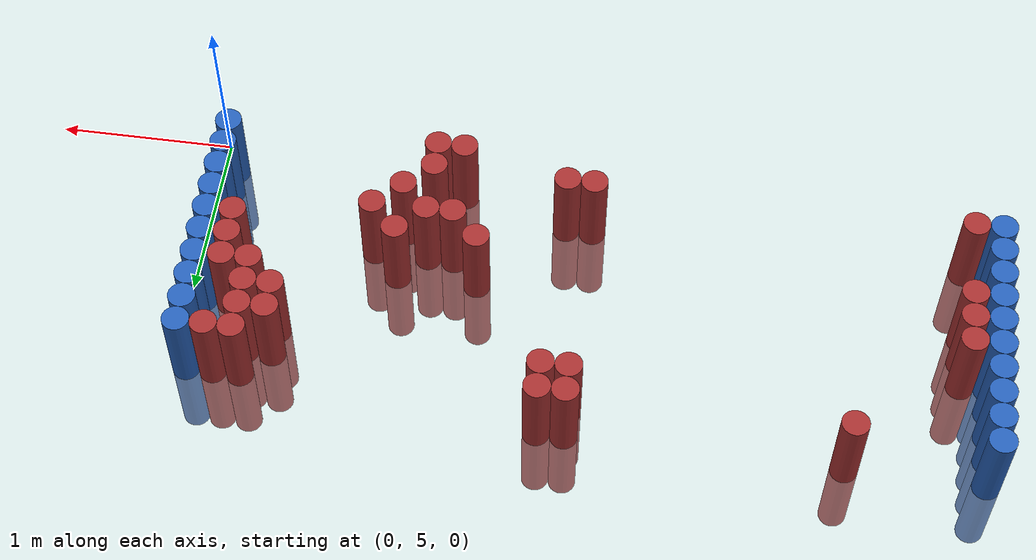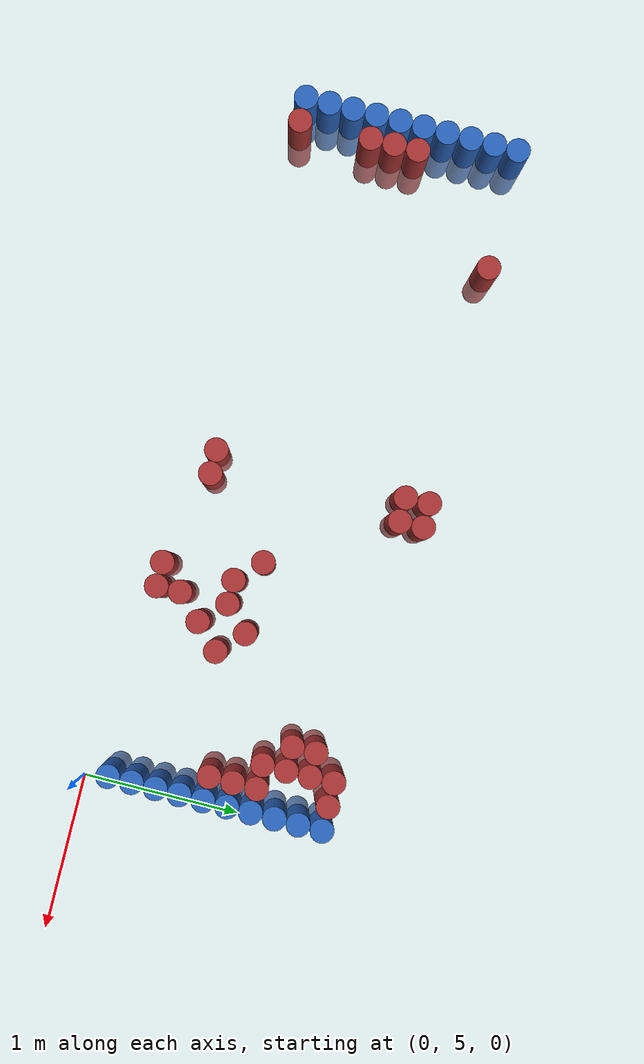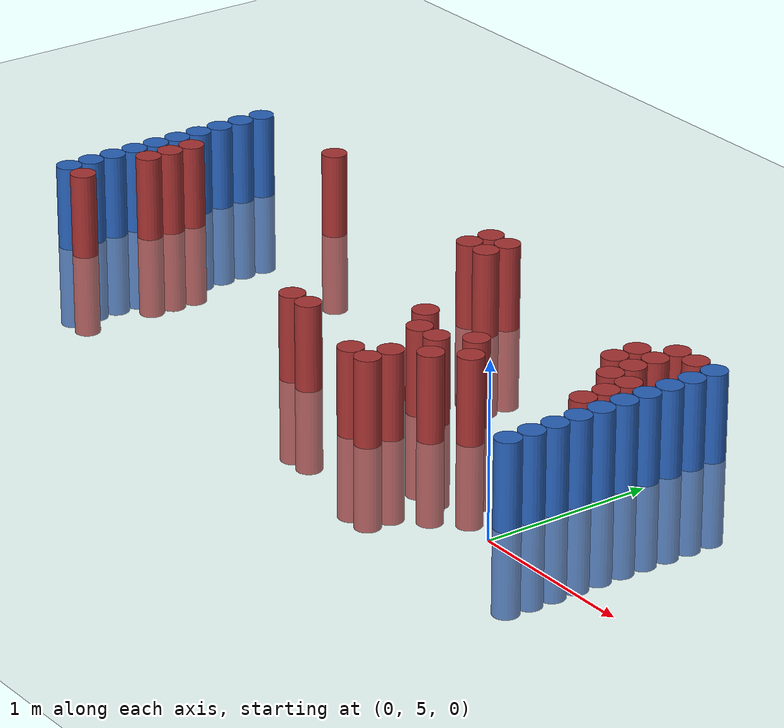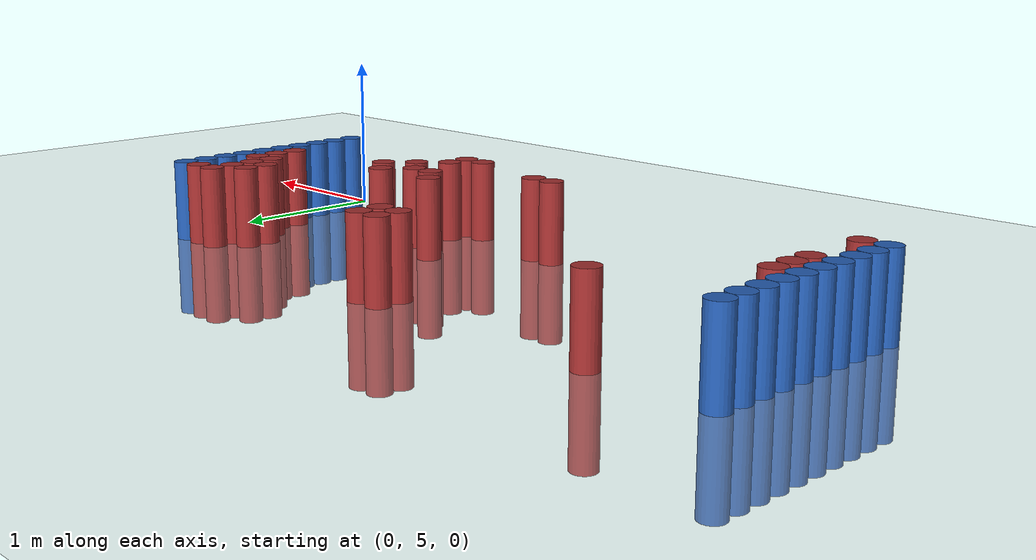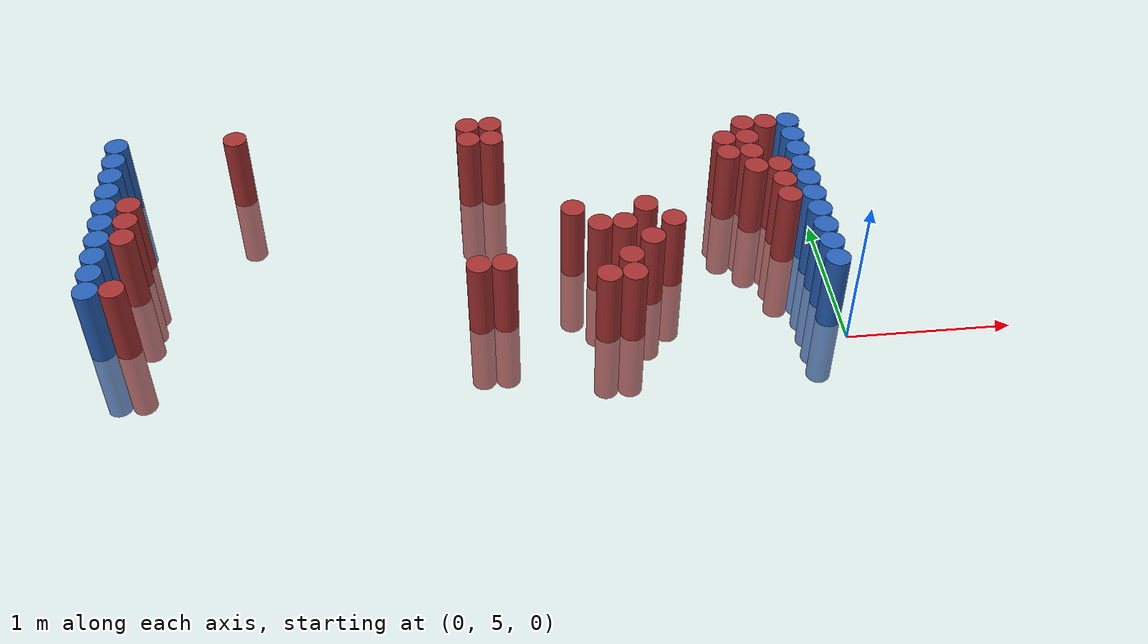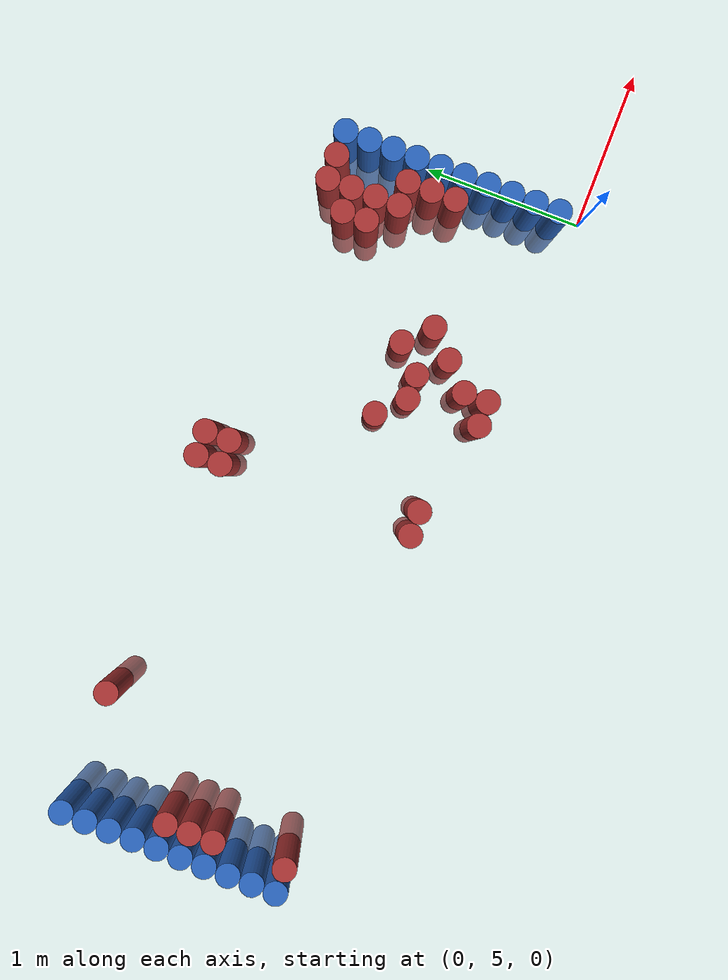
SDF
<sdf version="1.6">
 <world name="default">
  <model name="ground_plane">
   <static>1</static>
   <link name="link">
    <collision name="collision">
     <geometry><plane><normal>0 0 1</normal><size>100 100</size></plane></geometry>
     <surface><friction><ode><mu>100</mu><mu2>50</mu2></ode></friction></surface>
    </collision>
    <visual name="visual">
     <cast_shadows>0</cast_shadows>
     <geometry><plane><normal>0 0 1</normal><size>100 100</size></plane></geometry>
     <material>
      <script><uri>file://media/materials/scripts/gazebo.material</uri><name>Gazebo/Grey</name></script>
     </material>
    </visual>
   </link>
  </model>
  <model name="unit_cylinder_97">
   <static>1</static>
   <pose>-4.425000 5.325000 0.000000 0.000000 0.000000 0.000000</pose>
   <link name="link">
    <inertial>
     <mass>1</mass>
     <inertia><ixx>0.145833</ixx><ixy>0</ixy><ixz>0</ixz><iyy>0.145833</iyy><iyz>0</iyz><izz>0.125</izz></inertia>
    </inertial>
    <collision name="collision">
     <geometry><cylinder><radius>0.075000</radius><length>1</length></cylinder></geometry>
    </collision>
    <visual name="visual">
     <geometry><cylinder><radius>0.075000</radius><length>1</length></cylinder></geometry>
     <material>
      <ambient>0.152000 0.379000 0.720000 1</ambient>
      <diffuse>0.152000 0.379000 0.720000 1</diffuse>
     </material>
     <material>
      <script><name>Gazebo/Grey</name><uri>file://media/materials/scripts/gazebo.material</uri></script>
     </material>
    </visual>
   </link>
  </model>
  <model name="unit_cylinder_98">
   <static>1</static>
   <pose>-4.425000 5.475000 0.000000 0.000000 0.000000 0.000000</pose>
   <link name="link">
    <inertial>
     <mass>1</mass>
     <inertia><ixx>0.145833</ixx><ixy>0</ixy><ixz>0</ixz><iyy>0.145833</iyy><iyz>0</iyz><izz>0.125</izz></inertia>
    </inertial>
    <collision name="collision">
     <geometry><cylinder><radius>0.075000</radius><length>1</length></cylinder></geometry>
    </collision>
    <visual name="visual">
     <geometry><cylinder><radius>0.075000</radius><length>1</length></cylinder></geometry>
     <material>
      <ambient>0.152000 0.379000 0.720000 1</ambient>
      <diffuse>0.152000 0.379000 0.720000 1</diffuse>
     </material>
     <material>
      <script><name>Gazebo/Grey</name><uri>file://media/materials/scripts/gazebo.material</uri></script>
     </material>
    </visual>
   </link>
  </model>
  <model name="unit_cylinder_99">
   <static>1</static>
   <pose>-4.425000 5.625000 0.000000 0.000000 0.000000 0.000000</pose>
   <link name="link">
    <inertial>
     <mass>1</mass>
     <inertia><ixx>0.145833</ixx><ixy>0</ixy><ixz>0</ixz><iyy>0.145833</iyy><iyz>0</iyz><izz>0.125</izz></inertia>
    </inertial>
    <collision name="collision">
     <geometry><cylinder><radius>0.075000</radius><length>1</length></cylinder></geometry>
    </collision>
    <visual name="visual">
     <geometry><cylinder><radius>0.075000</radius><length>1</length></cylinder></geometry>
     <material>
      <ambient>0.152000 0.379000 0.720000 1</ambient>
      <diffuse>0.152000 0.379000 0.720000 1</diffuse>
     </material>
     <material>
      <script><name>Gazebo/Grey</name><uri>file://media/materials/scripts/gazebo.material</uri></script>
     </material>
    </visual>
   </link>
  </model>
  <model name="unit_cylinder_100">
   <static>1</static>
   <pose>-4.425000 5.775000 0.000000 0.000000 0.000000 0.000000</pose>
   <link name="link">
    <inertial>
     <mass>1</mass>
     <inertia><ixx>0.145833</ixx><ixy>0</ixy><ixz>0</ixz><iyy>0.145833</iyy><iyz>0</iyz><izz>0.125</izz></inertia>
    </inertial>
    <collision name="collision">
     <geometry><cylinder><radius>0.075000</radius><length>1</length></cylinder></geometry>
    </collision>
    <visual name="visual">
     <geometry><cylinder><radius>0.075000</radius><length>1</length></cylinder></geometry>
     <material>
      <ambient>0.152000 0.379000 0.720000 1</ambient>
      <diffuse>0.152000 0.379000 0.720000 1</diffuse>
     </material>
     <material>
      <script><name>Gazebo/Grey</name><uri>file://media/materials/scripts/gazebo.material</uri></script>
     </material>
    </visual>
   </link>
  </model>
  <model name="unit_cylinder_101">
   <static>1</static>
   <pose>-4.425000 5.925000 0.000000 0.000000 0.000000 0.000000</pose>
   <link name="link">
    <inertial>
     <mass>1</mass>
     <inertia><ixx>0.145833</ixx><ixy>0</ixy><ixz>0</ixz><iyy>0.145833</iyy><iyz>0</iyz><izz>0.125</izz></inertia>
    </inertial>
    <collision name="collision">
     <geometry><cylinder><radius>0.075000</radius><length>1</length></cylinder></geometry>
    </collision>
    <visual name="visual">
     <geometry><cylinder><radius>0.075000</radius><length>1</length></cylinder></geometry>
     <material>
      <ambient>0.152000 0.379000 0.720000 1</ambient>
      <diffuse>0.152000 0.379000 0.720000 1</diffuse>
     </material>
     <material>
      <script><name>Gazebo/Grey</name><uri>file://media/materials/scripts/gazebo.material</uri></script>
     </material>
    </visual>
   </link>
  </model>
  <model name="unit_cylinder_102">
   <static>1</static>
   <pose>-4.425000 6.075000 0.000000 0.000000 0.000000 0.000000</pose>
   <link name="link">
    <inertial>
     <mass>1</mass>
     <inertia><ixx>0.145833</ixx><ixy>0</ixy><ixz>0</ixz><iyy>0.145833</iyy><iyz>0</iyz><izz>0.125</izz></inertia>
    </inertial>
    <collision name="collision">
     <geometry><cylinder><radius>0.075000</radius><length>1</length></cylinder></geometry>
    </collision>
    <visual name="visual">
     <geometry><cylinder><radius>0.075000</radius><length>1</length></cylinder></geometry>
     <material>
      <ambient>0.152000 0.379000 0.720000 1</ambient>
      <diffuse>0.152000 0.379000 0.720000 1</diffuse>
     </material>
     <material>
      <script><name>Gazebo/Grey</name><uri>file://media/materials/scripts/gazebo.material</uri></script>
     </material>
    </visual>
   </link>
  </model>
  <model name="unit_cylinder_103">
   <static>1</static>
   <pose>-4.425000 6.225000 0.000000 0.000000 0.000000 0.000000</pose>
   <link name="link">
    <inertial>
     <mass>1</mass>
     <inertia><ixx>0.145833</ixx><ixy>0</ixy><ixz>0</ixz><iyy>0.145833</iyy><iyz>0</iyz><izz>0.125</izz></inertia>
    </inertial>
    <collision name="collision">
     <geometry><cylinder><radius>0.075000</radius><length>1</length></cylinder></geometry>
    </collision>
    <visual name="visual">
     <geometry><cylinder><radius>0.075000</radius><length>1</length></cylinder></geometry>
     <material>
      <ambient>0.152000 0.379000 0.720000 1</ambient>
      <diffuse>0.152000 0.379000 0.720000 1</diffuse>
     </material>
     <material>
      <script><name>Gazebo/Grey</name><uri>file://media/materials/scripts/gazebo.material</uri></script>
     </material>
    </visual>
   </link>
  </model>
  <model name="unit_cylinder_104">
   <static>1</static>
   <pose>-4.425000 6.375000 0.000000 0.000000 0.000000 0.000000</pose>
   <link name="link">
    <inertial>
     <mass>1</mass>
     <inertia><ixx>0.145833</ixx><ixy>0</ixy><ixz>0</ixz><iyy>0.145833</iyy><iyz>0</iyz><izz>0.125</izz></inertia>
    </inertial>
    <collision name="collision">
     <geometry><cylinder><radius>0.075000</radius><length>1</length></cylinder></geometry>
    </collision>
    <visual name="visual">
     <geometry><cylinder><radius>0.075000</radius><length>1</length></cylinder></geometry>
     <material>
      <ambient>0.152000 0.379000 0.720000 1</ambient>
      <diffuse>0.152000 0.379000 0.720000 1</diffuse>
     </material>
     <material>
      <script><name>Gazebo/Grey</name><uri>file://media/materials/scripts/gazebo.material</uri></script>
     </material>
    </visual>
   </link>
  </model>
  <model name="unit_cylinder_105">
   <static>1</static>
   <pose>-4.425000 6.525000 0.000000 0.000000 0.000000 0.000000</pose>
   <link name="link">
    <inertial>
     <mass>1</mass>
     <inertia><ixx>0.145833</ixx><ixy>0</ixy><ixz>0</ixz><iyy>0.145833</iyy><iyz>0</iyz><izz>0.125</izz></inertia>
    </inertial>
    <collision name="collision">
     <geometry><cylinder><radius>0.075000</radius><length>1</length></cylinder></geometry>
    </collision>
    <visual name="visual">
     <geometry><cylinder><radius>0.075000</radius><length>1</length></cylinder></geometry>
     <material>
      <ambient>0.152000 0.379000 0.720000 1</ambient>
      <diffuse>0.152000 0.379000 0.720000 1</diffuse>
     </material>
     <material>
      <script><name>Gazebo/Grey</name><uri>file://media/materials/scripts/gazebo.material</uri></script>
     </material>
    </visual>
   </link>
  </model>
  <model name="unit_cylinder_106">
   <static>1</static>
   <pose>-4.425000 6.675000 0.000000 0.000000 0.000000 0.000000</pose>
   <link name="link">
    <inertial>
     <mass>1</mass>
     <inertia><ixx>0.145833</ixx><ixy>0</ixy><ixz>0</ixz><iyy>0.145833</iyy><iyz>0</iyz><izz>0.125</izz></inertia>
    </inertial>
    <collision name="collision">
     <geometry><cylinder><radius>0.075000</radius><length>1</length></cylinder></geometry>
    </collision>
    <visual name="visual">
     <geometry><cylinder><radius>0.075000</radius><length>1</length></cylinder></geometry>
     <material>
      <ambient>0.152000 0.379000 0.720000 1</ambient>
      <diffuse>0.152000 0.379000 0.720000 1</diffuse>
     </material>
     <material>
      <script><name>Gazebo/Grey</name><uri>file://media/materials/scripts/gazebo.material</uri></script>
     </material>
    </visual>
   </link>
  </model>
  <model name="unit_cylinder_127">
   <static>1</static>
   <pose>-4.275000 5.325000 0.000000 0.000000 0.000000 0.000000</pose>
   <link name="link">
    <inertial>
     <mass>1</mass>
     <inertia><ixx>0.145833</ixx><ixy>0</ixy><ixz>0</ixz><iyy>0.145833</iyy><iyz>0</iyz><izz>0.125</izz></inertia>
    </inertial>
    <collision name="collision">
     <geometry><cylinder><radius>0.075000</radius><length>1</length></cylinder></geometry>
    </collision>
    <visual name="visual">
     <geometry><cylinder><radius>0.075000</radius><length>1</length></cylinder></geometry>
     <material>
      <ambient>0.648000 0.192000 0.192000 1</ambient>
      <diffuse>0.648000 0.192000 0.192000 1</diffuse>
     </material>
     <material>
      <script><name>Gazebo/Grey</name><uri>file://media/materials/scripts/gazebo.material</uri></script>
     </material>
    </visual>
   </link>
  </model>
  <model name="unit_cylinder_128">
   <static>1</static>
   <pose>-4.275000 5.775000 0.000000 0.000000 0.000000 0.000000</pose>
   <link name="link">
    <inertial>
     <mass>1</mass>
     <inertia><ixx>0.145833</ixx><ixy>0</ixy><ixz>0</ixz><iyy>0.145833</iyy><iyz>0</iyz><izz>0.125</izz></inertia>
    </inertial>
    <collision name="collision">
     <geometry><cylinder><radius>0.075000</radius><length>1</length></cylinder></geometry>
    </collision>
    <visual name="visual">
     <geometry><cylinder><radius>0.075000</radius><length>1</length></cylinder></geometry>
     <material>
      <ambient>0.648000 0.192000 0.192000 1</ambient>
      <diffuse>0.648000 0.192000 0.192000 1</diffuse>
     </material>
     <material>
      <script><name>Gazebo/Grey</name><uri>file://media/materials/scripts/gazebo.material</uri></script>
     </material>
    </visual>
   </link>
  </model>
  <model name="unit_cylinder_129">
   <static>1</static>
   <pose>-4.275000 5.925000 0.000000 0.000000 0.000000 0.000000</pose>
   <link name="link">
    <inertial>
     <mass>1</mass>
     <inertia><ixx>0.145833</ixx><ixy>0</ixy><ixz>0</ixz><iyy>0.145833</iyy><iyz>0</iyz><izz>0.125</izz></inertia>
    </inertial>
    <collision name="collision">
     <geometry><cylinder><radius>0.075000</radius><length>1</length></cylinder></geometry>
    </collision>
    <visual name="visual">
     <geometry><cylinder><radius>0.075000</radius><length>1</length></cylinder></geometry>
     <material>
      <ambient>0.648000 0.192000 0.192000 1</ambient>
      <diffuse>0.648000 0.192000 0.192000 1</diffuse>
     </material>
     <material>
      <script><name>Gazebo/Grey</name><uri>file://media/materials/scripts/gazebo.material</uri></script>
     </material>
    </visual>
   </link>
  </model>
  <model name="unit_cylinder_130">
   <static>1</static>
   <pose>-4.275000 6.075000 0.000000 0.000000 0.000000 0.000000</pose>
   <link name="link">
    <inertial>
     <mass>1</mass>
     <inertia><ixx>0.145833</ixx><ixy>0</ixy><ixz>0</ixz><iyy>0.145833</iyy><iyz>0</iyz><izz>0.125</izz></inertia>
    </inertial>
    <collision name="collision">
     <geometry><cylinder><radius>0.075000</radius><length>1</length></cylinder></geometry>
    </collision>
    <visual name="visual">
     <geometry><cylinder><radius>0.075000</radius><length>1</length></cylinder></geometry>
     <material>
      <ambient>0.648000 0.192000 0.192000 1</ambient>
      <diffuse>0.648000 0.192000 0.192000 1</diffuse>
     </material>
     <material>
      <script><name>Gazebo/Grey</name><uri>file://media/materials/scripts/gazebo.material</uri></script>
     </material>
    </visual>
   </link>
  </model>
  <model name="unit_cylinder_148">
   <static>1</static>
   <pose>-3.675000 6.675000 0.000000 0.000000 0.000000 0.000000</pose>
   <link name="link">
    <inertial>
     <mass>1</mass>
     <inertia><ixx>0.145833</ixx><ixy>0</ixy><ixz>0</ixz><iyy>0.145833</iyy><iyz>0</iyz><izz>0.125</izz></inertia>
    </inertial>
    <collision name="collision">
     <geometry><cylinder><radius>0.075000</radius><length>1</length></cylinder></geometry>
    </collision>
    <visual name="visual">
     <geometry><cylinder><radius>0.075000</radius><length>1</length></cylinder></geometry>
     <material>
      <ambient>0.648000 0.192000 0.192000 1</ambient>
      <diffuse>0.648000 0.192000 0.192000 1</diffuse>
     </material>
     <material>
      <script><name>Gazebo/Grey</name><uri>file://media/materials/scripts/gazebo.material</uri></script>
     </material>
    </visual>
   </link>
  </model>
  <model name="unit_cylinder_167">
   <static>1</static>
   <pose>-2.175000 5.325000 0.000000 0.000000 0.000000 0.000000</pose>
   <link name="link">
    <inertial>
     <mass>1</mass>
     <inertia><ixx>0.145833</ixx><ixy>0</ixy><ixz>0</ixz><iyy>0.145833</iyy><iyz>0</iyz><izz>0.125</izz></inertia>
    </inertial>
    <collision name="collision">
     <geometry><cylinder><radius>0.075000</radius><length>1</length></cylinder></geometry>
    </collision>
    <visual name="visual">
     <geometry><cylinder><radius>0.075000</radius><length>1</length></cylinder></geometry>
     <material>
      <ambient>0.648000 0.192000 0.192000 1</ambient>
      <diffuse>0.648000 0.192000 0.192000 1</diffuse>
     </material>
     <material>
      <script><name>Gazebo/Grey</name><uri>file://media/materials/scripts/gazebo.material</uri></script>
     </material>
    </visual>
   </link>
  </model>
  <model name="unit_cylinder_168">
   <static>1</static>
   <pose>-2.175000 6.525000 0.000000 0.000000 0.000000 0.000000</pose>
   <link name="link">
    <inertial>
     <mass>1</mass>
     <inertia><ixx>0.145833</ixx><ixy>0</ixy><ixz>0</ixz><iyy>0.145833</iyy><iyz>0</iyz><izz>0.125</izz></inertia>
    </inertial>
    <collision name="collision">
     <geometry><cylinder><radius>0.075000</radius><length>1</length></cylinder></geometry>
    </collision>
    <visual name="visual">
     <geometry><cylinder><radius>0.075000</radius><length>1</length></cylinder></geometry>
     <material>
      <ambient>0.648000 0.192000 0.192000 1</ambient>
      <diffuse>0.648000 0.192000 0.192000 1</diffuse>
     </material>
     <material>
      <script><name>Gazebo/Grey</name><uri>file://media/materials/scripts/gazebo.material</uri></script>
     </material>
    </visual>
   </link>
  </model>
  <model name="unit_cylinder_169">
   <static>1</static>
   <pose>-2.175000 6.675000 0.000000 0.000000 0.000000 0.000000</pose>
   <link name="link">
    <inertial>
     <mass>1</mass>
     <inertia><ixx>0.145833</ixx><ixy>0</ixy><ixz>0</ixz><iyy>0.145833</iyy><iyz>0</iyz><izz>0.125</izz></inertia>
    </inertial>
    <collision name="collision">
     <geometry><cylinder><radius>0.075000</radius><length>1</length></cylinder></geometry>
    </collision>
    <visual name="visual">
     <geometry><cylinder><radius>0.075000</radius><length>1</length></cylinder></geometry>
     <material>
      <ambient>0.648000 0.192000 0.192000 1</ambient>
      <diffuse>0.648000 0.192000 0.192000 1</diffuse>
     </material>
     <material>
      <script><name>Gazebo/Grey</name><uri>file://media/materials/scripts/gazebo.material</uri></script>
     </material>
    </visual>
   </link>
  </model>
  <model name="unit_cylinder_173">
   <static>1</static>
   <pose>-2.025000 5.325000 0.000000 0.000000 0.000000 0.000000</pose>
   <link name="link">
    <inertial>
     <mass>1</mass>
     <inertia><ixx>0.145833</ixx><ixy>0</ixy><ixz>0</ixz><iyy>0.145833</iyy><iyz>0</iyz><izz>0.125</izz></inertia>
    </inertial>
    <collision name="collision">
     <geometry><cylinder><radius>0.075000</radius><length>1</length></cylinder></geometry>
    </collision>
    <visual name="visual">
     <geometry><cylinder><radius>0.075000</radius><length>1</length></cylinder></geometry>
     <material>
      <ambient>0.648000 0.192000 0.192000 1</ambient>
      <diffuse>0.648000 0.192000 0.192000 1</diffuse>
     </material>
     <material>
      <script><name>Gazebo/Grey</name><uri>file://media/materials/scripts/gazebo.material</uri></script>
     </material>
    </visual>
   </link>
  </model>
  <model name="unit_cylinder_174">
   <static>1</static>
   <pose>-2.025000 6.525000 0.000000 0.000000 0.000000 0.000000</pose>
   <link name="link">
    <inertial>
     <mass>1</mass>
     <inertia><ixx>0.145833</ixx><ixy>0</ixy><ixz>0</ixz><iyy>0.145833</iyy><iyz>0</iyz><izz>0.125</izz></inertia>
    </inertial>
    <collision name="collision">
     <geometry><cylinder><radius>0.075000</radius><length>1</length></cylinder></geometry>
    </collision>
    <visual name="visual">
     <geometry><cylinder><radius>0.075000</radius><length>1</length></cylinder></geometry>
     <material>
      <ambient>0.648000 0.192000 0.192000 1</ambient>
      <diffuse>0.648000 0.192000 0.192000 1</diffuse>
     </material>
     <material>
      <script><name>Gazebo/Grey</name><uri>file://media/materials/scripts/gazebo.material</uri></script>
     </material>
    </visual>
   </link>
  </model>
  <model name="unit_cylinder_175">
   <static>1</static>
   <pose>-2.025000 6.675000 0.000000 0.000000 0.000000 0.000000</pose>
   <link name="link">
    <inertial>
     <mass>1</mass>
     <inertia><ixx>0.145833</ixx><ixy>0</ixy><ixz>0</ixz><iyy>0.145833</iyy><iyz>0</iyz><izz>0.125</izz></inertia>
    </inertial>
    <collision name="collision">
     <geometry><cylinder><radius>0.075000</radius><length>1</length></cylinder></geometry>
    </collision>
    <visual name="visual">
     <geometry><cylinder><radius>0.075000</radius><length>1</length></cylinder></geometry>
     <material>
      <ambient>0.648000 0.192000 0.192000 1</ambient>
      <diffuse>0.648000 0.192000 0.192000 1</diffuse>
     </material>
     <material>
      <script><name>Gazebo/Grey</name><uri>file://media/materials/scripts/gazebo.material</uri></script>
     </material>
    </visual>
   </link>
  </model>
  <model name="unit_cylinder_179">
   <static>1</static>
   <pose>-1.575000 5.775000 0.000000 0.000000 0.000000 0.000000</pose>
   <link name="link">
    <inertial>
     <mass>1</mass>
     <inertia><ixx>0.145833</ixx><ixy>0</ixy><ixz>0</ixz><iyy>0.145833</iyy><iyz>0</iyz><izz>0.125</izz></inertia>
    </inertial>
    <collision name="collision">
     <geometry><cylinder><radius>0.075000</radius><length>1</length></cylinder></geometry>
    </collision>
    <visual name="visual">
     <geometry><cylinder><radius>0.075000</radius><length>1</length></cylinder></geometry>
     <material>
      <ambient>0.648000 0.192000 0.192000 1</ambient>
      <diffuse>0.648000 0.192000 0.192000 1</diffuse>
     </material>
     <material>
      <script><name>Gazebo/Grey</name><uri>file://media/materials/scripts/gazebo.material</uri></script>
     </material>
    </visual>
   </link>
  </model>
  <model name="unit_cylinder_182">
   <static>1</static>
   <pose>-1.425000 5.175000 0.000000 0.000000 0.000000 0.000000</pose>
   <link name="link">
    <inertial>
     <mass>1</mass>
     <inertia><ixx>0.145833</ixx><ixy>0</ixy><ixz>0</ixz><iyy>0.145833</iyy><iyz>0</iyz><izz>0.125</izz></inertia>
    </inertial>
    <collision name="collision">
     <geometry><cylinder><radius>0.075000</radius><length>1</length></cylinder></geometry>
    </collision>
    <visual name="visual">
     <geometry><cylinder><radius>0.075000</radius><length>1</length></cylinder></geometry>
     <material>
      <ambient>0.648000 0.192000 0.192000 1</ambient>
      <diffuse>0.648000 0.192000 0.192000 1</diffuse>
     </material>
     <material>
      <script><name>Gazebo/Grey</name><uri>file://media/materials/scripts/gazebo.material</uri></script>
     </material>
    </visual>
   </link>
  </model>
  <model name="unit_cylinder_183">
   <static>1</static>
   <pose>-1.425000 5.625000 0.000000 0.000000 0.000000 0.000000</pose>
   <link name="link">
    <inertial>
     <mass>1</mass>
     <inertia><ixx>0.145833</ixx><ixy>0</ixy><ixz>0</ixz><iyy>0.145833</iyy><iyz>0</iyz><izz>0.125</izz></inertia>
    </inertial>
    <collision name="collision">
     <geometry><cylinder><radius>0.075000</radius><length>1</length></cylinder></geometry>
    </collision>
    <visual name="visual">
     <geometry><cylinder><radius>0.075000</radius><length>1</length></cylinder></geometry>
     <material>
      <ambient>0.648000 0.192000 0.192000 1</ambient>
      <diffuse>0.648000 0.192000 0.192000 1</diffuse>
     </material>
     <material>
      <script><name>Gazebo/Grey</name><uri>file://media/materials/scripts/gazebo.material</uri></script>
     </material>
    </visual>
   </link>
  </model>
  <model name="unit_cylinder_184">
   <static>1</static>
   <pose>-1.275000 5.175000 0.000000 0.000000 0.000000 0.000000</pose>
   <link name="link">
    <inertial>
     <mass>1</mass>
     <inertia><ixx>0.145833</ixx><ixy>0</ixy><ixz>0</ixz><iyy>0.145833</iyy><iyz>0</iyz><izz>0.125</izz></inertia>
    </inertial>
    <collision name="collision">
     <geometry><cylinder><radius>0.075000</radius><length>1</length></cylinder></geometry>
    </collision>
    <visual name="visual">
     <geometry><cylinder><radius>0.075000</radius><length>1</length></cylinder></geometry>
     <material>
      <ambient>0.648000 0.192000 0.192000 1</ambient>
      <diffuse>0.648000 0.192000 0.192000 1</diffuse>
     </material>
     <material>
      <script><name>Gazebo/Grey</name><uri>file://media/materials/scripts/gazebo.material</uri></script>
     </material>
    </visual>
   </link>
  </model>
  <model name="unit_cylinder_185">
   <static>1</static>
   <pose>-1.275000 5.325000 0.000000 0.000000 0.000000 0.000000</pose>
   <link name="link">
    <inertial>
     <mass>1</mass>
     <inertia><ixx>0.145833</ixx><ixy>0</ixy><ixz>0</ixz><iyy>0.145833</iyy><iyz>0</iyz><izz>0.125</izz></inertia>
    </inertial>
    <collision name="collision">
     <geometry><cylinder><radius>0.075000</radius><length>1</length></cylinder></geometry>
    </collision>
    <visual name="visual">
     <geometry><cylinder><radius>0.075000</radius><length>1</length></cylinder></geometry>
     <material>
      <ambient>0.648000 0.192000 0.192000 1</ambient>
      <diffuse>0.648000 0.192000 0.192000 1</diffuse>
     </material>
     <material>
      <script><name>Gazebo/Grey</name><uri>file://media/materials/scripts/gazebo.material</uri></script>
     </material>
    </visual>
   </link>
  </model>
  <model name="unit_cylinder_186">
   <static>1</static>
   <pose>-1.275000 5.625000 0.000000 0.000000 0.000000 0.000000</pose>
   <link name="link">
    <inertial>
     <mass>1</mass>
     <inertia><ixx>0.145833</ixx><ixy>0</ixy><ixz>0</ixz><iyy>0.145833</iyy><iyz>0</iyz><izz>0.125</izz></inertia>
    </inertial>
    <collision name="collision">
     <geometry><cylinder><radius>0.075000</radius><length>1</length></cylinder></geometry>
    </collision>
    <visual name="visual">
     <geometry><cylinder><radius>0.075000</radius><length>1</length></cylinder></geometry>
     <material>
      <ambient>0.648000 0.192000 0.192000 1</ambient>
      <diffuse>0.648000 0.192000 0.192000 1</diffuse>
     </material>
     <material>
      <script><name>Gazebo/Grey</name><uri>file://media/materials/scripts/gazebo.material</uri></script>
     </material>
    </visual>
   </link>
  </model>
  <model name="unit_cylinder_187">
   <static>1</static>
   <pose>-1.125000 5.475000 0.000000 0.000000 0.000000 0.000000</pose>
   <link name="link">
    <inertial>
     <mass>1</mass>
     <inertia><ixx>0.145833</ixx><ixy>0</ixy><ixz>0</ixz><iyy>0.145833</iyy><iyz>0</iyz><izz>0.125</izz></inertia>
    </inertial>
    <collision name="collision">
     <geometry><cylinder><radius>0.075000</radius><length>1</length></cylinder></geometry>
    </collision>
    <visual name="visual">
     <geometry><cylinder><radius>0.075000</radius><length>1</length></cylinder></geometry>
     <material>
      <ambient>0.648000 0.192000 0.192000 1</ambient>
      <diffuse>0.648000 0.192000 0.192000 1</diffuse>
     </material>
     <material>
      <script><name>Gazebo/Grey</name><uri>file://media/materials/scripts/gazebo.material</uri></script>
     </material>
    </visual>
   </link>
  </model>
  <model name="unit_cylinder_188">
   <static>1</static>
   <pose>-1.125000 5.775000 0.000000 0.000000 0.000000 0.000000</pose>
   <link name="link">
    <inertial>
     <mass>1</mass>
     <inertia><ixx>0.145833</ixx><ixy>0</ixy><ixz>0</ixz><iyy>0.145833</iyy><iyz>0</iyz><izz>0.125</izz></inertia>
    </inertial>
    <collision name="collision">
     <geometry><cylinder><radius>0.075000</radius><length>1</length></cylinder></geometry>
    </collision>
    <visual name="visual">
     <geometry><cylinder><radius>0.075000</radius><length>1</length></cylinder></geometry>
     <material>
      <ambient>0.648000 0.192000 0.192000 1</ambient>
      <diffuse>0.648000 0.192000 0.192000 1</diffuse>
     </material>
     <material>
      <script><name>Gazebo/Grey</name><uri>file://media/materials/scripts/gazebo.material</uri></script>
     </material>
    </visual>
   </link>
  </model>
  <model name="unit_cylinder_189">
   <static>1</static>
   <pose>-0.975000 5.625000 0.000000 0.000000 0.000000 0.000000</pose>
   <link name="link">
    <inertial>
     <mass>1</mass>
     <inertia><ixx>0.145833</ixx><ixy>0</ixy><ixz>0</ixz><iyy>0.145833</iyy><iyz>0</iyz><izz>0.125</izz></inertia>
    </inertial>
    <collision name="collision">
     <geometry><cylinder><radius>0.075000</radius><length>1</length></cylinder></geometry>
    </collision>
    <visual name="visual">
     <geometry><cylinder><radius>0.075000</radius><length>1</length></cylinder></geometry>
     <material>
      <ambient>0.648000 0.192000 0.192000 1</ambient>
      <diffuse>0.648000 0.192000 0.192000 1</diffuse>
     </material>
     <material>
      <script><name>Gazebo/Grey</name><uri>file://media/materials/scripts/gazebo.material</uri></script>
     </material>
    </visual>
   </link>
  </model>
  <model name="unit_cylinder_193">
   <static>1</static>
   <pose>-0.525000 6.225000 0.000000 0.000000 0.000000 0.000000</pose>
   <link name="link">
    <inertial>
     <mass>1</mass>
     <inertia><ixx>0.145833</ixx><ixy>0</ixy><ixz>0</ixz><iyy>0.145833</iyy><iyz>0</iyz><izz>0.125</izz></inertia>
    </inertial>
    <collision name="collision">
     <geometry><cylinder><radius>0.075000</radius><length>1</length></cylinder></geometry>
    </collision>
    <visual name="visual">
     <geometry><cylinder><radius>0.075000</radius><length>1</length></cylinder></geometry>
     <material>
      <ambient>0.648000 0.192000 0.192000 1</ambient>
      <diffuse>0.648000 0.192000 0.192000 1</diffuse>
     </material>
     <material>
      <script><name>Gazebo/Grey</name><uri>file://media/materials/scripts/gazebo.material</uri></script>
     </material>
    </visual>
   </link>
  </model>
  <model name="unit_cylinder_194">
   <static>1</static>
   <pose>-0.525000 6.375000 0.000000 0.000000 0.000000 0.000000</pose>
   <link name="link">
    <inertial>
     <mass>1</mass>
     <inertia><ixx>0.145833</ixx><ixy>0</ixy><ixz>0</ixz><iyy>0.145833</iyy><iyz>0</iyz><izz>0.125</izz></inertia>
    </inertial>
    <collision name="collision">
     <geometry><cylinder><radius>0.075000</radius><length>1</length></cylinder></geometry>
    </collision>
    <visual name="visual">
     <geometry><cylinder><radius>0.075000</radius><length>1</length></cylinder></geometry>
     <material>
      <ambient>0.648000 0.192000 0.192000 1</ambient>
      <diffuse>0.648000 0.192000 0.192000 1</diffuse>
     </material>
     <material>
      <script><name>Gazebo/Grey</name><uri>file://media/materials/scripts/gazebo.material</uri></script>
     </material>
    </visual>
   </link>
  </model>
  <model name="unit_cylinder_198">
   <static>1</static>
   <pose>-0.375000 6.075000 0.000000 0.000000 0.000000 0.000000</pose>
   <link name="link">
    <inertial>
     <mass>1</mass>
     <inertia><ixx>0.145833</ixx><ixy>0</ixy><ixz>0</ixz><iyy>0.145833</iyy><iyz>0</iyz><izz>0.125</izz></inertia>
    </inertial>
    <collision name="collision">
     <geometry><cylinder><radius>0.075000</radius><length>1</length></cylinder></geometry>
    </collision>
    <visual name="visual">
     <geometry><cylinder><radius>0.075000</radius><length>1</length></cylinder></geometry>
     <material>
      <ambient>0.648000 0.192000 0.192000 1</ambient>
      <diffuse>0.648000 0.192000 0.192000 1</diffuse>
     </material>
     <material>
      <script><name>Gazebo/Grey</name><uri>file://media/materials/scripts/gazebo.material</uri></script>
     </material>
    </visual>
   </link>
  </model>
  <model name="unit_cylinder_199">
   <static>1</static>
   <pose>-0.375000 6.225000 0.000000 0.000000 0.000000 0.000000</pose>
   <link name="link">
    <inertial>
     <mass>1</mass>
     <inertia><ixx>0.145833</ixx><ixy>0</ixy><ixz>0</ixz><iyy>0.145833</iyy><iyz>0</iyz><izz>0.125</izz></inertia>
    </inertial>
    <collision name="collision">
     <geometry><cylinder><radius>0.075000</radius><length>1</length></cylinder></geometry>
    </collision>
    <visual name="visual">
     <geometry><cylinder><radius>0.075000</radius><length>1</length></cylinder></geometry>
     <material>
      <ambient>0.648000 0.192000 0.192000 1</ambient>
      <diffuse>0.648000 0.192000 0.192000 1</diffuse>
     </material>
     <material>
      <script><name>Gazebo/Grey</name><uri>file://media/materials/scripts/gazebo.material</uri></script>
     </material>
    </visual>
   </link>
  </model>
  <model name="unit_cylinder_200">
   <static>1</static>
   <pose>-0.375000 6.375000 0.000000 0.000000 0.000000 0.000000</pose>
   <link name="link">
    <inertial>
     <mass>1</mass>
     <inertia><ixx>0.145833</ixx><ixy>0</ixy><ixz>0</ixz><iyy>0.145833</iyy><iyz>0</iyz><izz>0.125</izz></inertia>
    </inertial>
    <collision name="collision">
     <geometry><cylinder><radius>0.075000</radius><length>1</length></cylinder></geometry>
    </collision>
    <visual name="visual">
     <geometry><cylinder><radius>0.075000</radius><length>1</length></cylinder></geometry>
     <material>
      <ambient>0.648000 0.192000 0.192000 1</ambient>
      <diffuse>0.648000 0.192000 0.192000 1</diffuse>
     </material>
     <material>
      <script><name>Gazebo/Grey</name><uri>file://media/materials/scripts/gazebo.material</uri></script>
     </material>
    </visual>
   </link>
  </model>
  <model name="unit_cylinder_201">
   <static>1</static>
   <pose>-0.375000 6.525000 0.000000 0.000000 0.000000 0.000000</pose>
   <link name="link">
    <inertial>
     <mass>1</mass>
     <inertia><ixx>0.145833</ixx><ixy>0</ixy><ixz>0</ixz><iyy>0.145833</iyy><iyz>0</iyz><izz>0.125</izz></inertia>
    </inertial>
    <collision name="collision">
     <geometry><cylinder><radius>0.075000</radius><length>1</length></cylinder></geometry>
    </collision>
    <visual name="visual">
     <geometry><cylinder><radius>0.075000</radius><length>1</length></cylinder></geometry>
     <material>
      <ambient>0.648000 0.192000 0.192000 1</ambient>
      <diffuse>0.648000 0.192000 0.192000 1</diffuse>
     </material>
     <material>
      <script><name>Gazebo/Grey</name><uri>file://media/materials/scripts/gazebo.material</uri></script>
     </material>
    </visual>
   </link>
  </model>
  <model name="unit_cylinder_206">
   <static>1</static>
   <pose>-0.225000 5.775000 0.000000 0.000000 0.000000 0.000000</pose>
   <link name="link">
    <inertial>
     <mass>1</mass>
     <inertia><ixx>0.145833</ixx><ixy>0</ixy><ixz>0</ixz><iyy>0.145833</iyy><iyz>0</iyz><izz>0.125</izz></inertia>
    </inertial>
    <collision name="collision">
     <geometry><cylinder><radius>0.075000</radius><length>1</length></cylinder></geometry>
    </collision>
    <visual name="visual">
     <geometry><cylinder><radius>0.075000</radius><length>1</length></cylinder></geometry>
     <material>
      <ambient>0.648000 0.192000 0.192000 1</ambient>
      <diffuse>0.648000 0.192000 0.192000 1</diffuse>
     </material>
     <material>
      <script><name>Gazebo/Grey</name><uri>file://media/materials/scripts/gazebo.material</uri></script>
     </material>
    </visual>
   </link>
  </model>
  <model name="unit_cylinder_207">
   <static>1</static>
   <pose>-0.225000 5.925000 0.000000 0.000000 0.000000 0.000000</pose>
   <link name="link">
    <inertial>
     <mass>1</mass>
     <inertia><ixx>0.145833</ixx><ixy>0</ixy><ixz>0</ixz><iyy>0.145833</iyy><iyz>0</iyz><izz>0.125</izz></inertia>
    </inertial>
    <collision name="collision">
     <geometry><cylinder><radius>0.075000</radius><length>1</length></cylinder></geometry>
    </collision>
    <visual name="visual">
     <geometry><cylinder><radius>0.075000</radius><length>1</length></cylinder></geometry>
     <material>
      <ambient>0.648000 0.192000 0.192000 1</ambient>
      <diffuse>0.648000 0.192000 0.192000 1</diffuse>
     </material>
     <material>
      <script><name>Gazebo/Grey</name><uri>file://media/materials/scripts/gazebo.material</uri></script>
     </material>
    </visual>
   </link>
  </model>
  <model name="unit_cylinder_208">
   <static>1</static>
   <pose>-0.225000 6.075000 0.000000 0.000000 0.000000 0.000000</pose>
   <link name="link">
    <inertial>
     <mass>1</mass>
     <inertia><ixx>0.145833</ixx><ixy>0</ixy><ixz>0</ixz><iyy>0.145833</iyy><iyz>0</iyz><izz>0.125</izz></inertia>
    </inertial>
    <collision name="collision">
     <geometry><cylinder><radius>0.075000</radius><length>1</length></cylinder></geometry>
    </collision>
    <visual name="visual">
     <geometry><cylinder><radius>0.075000</radius><length>1</length></cylinder></geometry>
     <material>
      <ambient>0.648000 0.192000 0.192000 1</ambient>
      <diffuse>0.648000 0.192000 0.192000 1</diffuse>
     </material>
     <material>
      <script><name>Gazebo/Grey</name><uri>file://media/materials/scripts/gazebo.material</uri></script>
     </material>
    </visual>
   </link>
  </model>
  <model name="unit_cylinder_209">
   <static>1</static>
   <pose>-0.225000 6.525000 0.000000 0.000000 0.000000 0.000000</pose>
   <link name="link">
    <inertial>
     <mass>1</mass>
     <inertia><ixx>0.145833</ixx><ixy>0</ixy><ixz>0</ixz><iyy>0.145833</iyy><iyz>0</iyz><izz>0.125</izz></inertia>
    </inertial>
    <collision name="collision">
     <geometry><cylinder><radius>0.075000</radius><length>1</length></cylinder></geometry>
    </collision>
    <visual name="visual">
     <geometry><cylinder><radius>0.075000</radius><length>1</length></cylinder></geometry>
     <material>
      <ambient>0.648000 0.192000 0.192000 1</ambient>
      <diffuse>0.648000 0.192000 0.192000 1</diffuse>
     </material>
     <material>
      <script><name>Gazebo/Grey</name><uri>file://media/materials/scripts/gazebo.material</uri></script>
     </material>
    </visual>
   </link>
  </model>
  <model name="unit_cylinder_218">
   <static>1</static>
   <pose>-0.075000 5.175000 0.000000 0.000000 0.000000 0.000000</pose>
   <link name="link">
    <inertial>
     <mass>1</mass>
     <inertia><ixx>0.145833</ixx><ixy>0</ixy><ixz>0</ixz><iyy>0.145833</iyy><iyz>0</iyz><izz>0.125</izz></inertia>
    </inertial>
    <collision name="collision">
     <geometry><cylinder><radius>0.075000</radius><length>1</length></cylinder></geometry>
    </collision>
    <visual name="visual">
     <geometry><cylinder><radius>0.075000</radius><length>1</length></cylinder></geometry>
     <material>
      <ambient>0.152000 0.379000 0.720000 1</ambient>
      <diffuse>0.152000 0.379000 0.720000 1</diffuse>
     </material>
     <material>
      <script><name>Gazebo/Grey</name><uri>file://media/materials/scripts/gazebo.material</uri></script>
     </material>
    </visual>
   </link>
  </model>
  <model name="unit_cylinder_219">
   <static>1</static>
   <pose>-0.075000 5.325000 0.000000 0.000000 0.000000 0.000000</pose>
   <link name="link">
    <inertial>
     <mass>1</mass>
     <inertia><ixx>0.145833</ixx><ixy>0</ixy><ixz>0</ixz><iyy>0.145833</iyy><iyz>0</iyz><izz>0.125</izz></inertia>
    </inertial>
    <collision name="collision">
     <geometry><cylinder><radius>0.075000</radius><length>1</length></cylinder></geometry>
    </collision>
    <visual name="visual">
     <geometry><cylinder><radius>0.075000</radius><length>1</length></cylinder></geometry>
     <material>
      <ambient>0.152000 0.379000 0.720000 1</ambient>
      <diffuse>0.152000 0.379000 0.720000 1</diffuse>
     </material>
     <material>
      <script><name>Gazebo/Grey</name><uri>file://media/materials/scripts/gazebo.material</uri></script>
     </material>
    </visual>
   </link>
  </model>
  <model name="unit_cylinder_220">
   <static>1</static>
   <pose>-0.075000 5.475000 0.000000 0.000000 0.000000 0.000000</pose>
   <link name="link">
    <inertial>
     <mass>1</mass>
     <inertia><ixx>0.145833</ixx><ixy>0</ixy><ixz>0</ixz><iyy>0.145833</iyy><iyz>0</iyz><izz>0.125</izz></inertia>
    </inertial>
    <collision name="collision">
     <geometry><cylinder><radius>0.075000</radius><length>1</length></cylinder></geometry>
    </collision>
    <visual name="visual">
     <geometry><cylinder><radius>0.075000</radius><length>1</length></cylinder></geometry>
     <material>
      <ambient>0.152000 0.379000 0.720000 1</ambient>
      <diffuse>0.152000 0.379000 0.720000 1</diffuse>
     </material>
     <material>
      <script><name>Gazebo/Grey</name><uri>file://media/materials/scripts/gazebo.material</uri></script>
     </material>
    </visual>
   </link>
  </model>
  <model name="unit_cylinder_221">
   <static>1</static>
   <pose>-0.075000 5.625000 0.000000 0.000000 0.000000 0.000000</pose>
   <link name="link">
    <inertial>
     <mass>1</mass>
     <inertia><ixx>0.145833</ixx><ixy>0</ixy><ixz>0</ixz><iyy>0.145833</iyy><iyz>0</iyz><izz>0.125</izz></inertia>
    </inertial>
    <collision name="collision">
     <geometry><cylinder><radius>0.075000</radius><length>1</length></cylinder></geometry>
    </collision>
    <visual name="visual">
     <geometry><cylinder><radius>0.075000</radius><length>1</length></cylinder></geometry>
     <material>
      <ambient>0.152000 0.379000 0.720000 1</ambient>
      <diffuse>0.152000 0.379000 0.720000 1</diffuse>
     </material>
     <material>
      <script><name>Gazebo/Grey</name><uri>file://media/materials/scripts/gazebo.material</uri></script>
     </material>
    </visual>
   </link>
  </model>
  <model name="unit_cylinder_222">
   <static>1</static>
   <pose>-0.075000 5.775000 0.000000 0.000000 0.000000 0.000000</pose>
   <link name="link">
    <inertial>
     <mass>1</mass>
     <inertia><ixx>0.145833</ixx><ixy>0</ixy><ixz>0</ixz><iyy>0.145833</iyy><iyz>0</iyz><izz>0.125</izz></inertia>
    </inertial>
    <collision name="collision">
     <geometry><cylinder><radius>0.075000</radius><length>1</length></cylinder></geometry>
    </collision>
    <visual name="visual">
     <geometry><cylinder><radius>0.075000</radius><length>1</length></cylinder></geometry>
     <material>
      <ambient>0.152000 0.379000 0.720000 1</ambient>
      <diffuse>0.152000 0.379000 0.720000 1</diffuse>
     </material>
     <material>
      <script><name>Gazebo/Grey</name><uri>file://media/materials/scripts/gazebo.material</uri></script>
     </material>
    </visual>
   </link>
  </model>
  <model name="unit_cylinder_223">
   <static>1</static>
   <pose>-0.075000 5.925000 0.000000 0.000000 0.000000 0.000000</pose>
   <link name="link">
    <inertial>
     <mass>1</mass>
     <inertia><ixx>0.145833</ixx><ixy>0</ixy><ixz>0</ixz><iyy>0.145833</iyy><iyz>0</iyz><izz>0.125</izz></inertia>
    </inertial>
    <collision name="collision">
     <geometry><cylinder><radius>0.075000</radius><length>1</length></cylinder></geometry>
    </collision>
    <visual name="visual">
     <geometry><cylinder><radius>0.075000</radius><length>1</length></cylinder></geometry>
     <material>
      <ambient>0.152000 0.379000 0.720000 1</ambient>
      <diffuse>0.152000 0.379000 0.720000 1</diffuse>
     </material>
     <material>
      <script><name>Gazebo/Grey</name><uri>file://media/materials/scripts/gazebo.material</uri></script>
     </material>
    </visual>
   </link>
  </model>
  <model name="unit_cylinder_224">
   <static>1</static>
   <pose>-0.075000 6.075000 0.000000 0.000000 0.000000 0.000000</pose>
   <link name="link">
    <inertial>
     <mass>1</mass>
     <inertia><ixx>0.145833</ixx><ixy>0</ixy><ixz>0</ixz><iyy>0.145833</iyy><iyz>0</iyz><izz>0.125</izz></inertia>
    </inertial>
    <collision name="collision">
     <geometry><cylinder><radius>0.075000</radius><length>1</length></cylinder></geometry>
    </collision>
    <visual name="visual">
     <geometry><cylinder><radius>0.075000</radius><length>1</length></cylinder></geometry>
     <material>
      <ambient>0.152000 0.379000 0.720000 1</ambient>
      <diffuse>0.152000 0.379000 0.720000 1</diffuse>
     </material>
     <material>
      <script><name>Gazebo/Grey</name><uri>file://media/materials/scripts/gazebo.material</uri></script>
     </material>
    </visual>
   </link>
  </model>
  <model name="unit_cylinder_225">
   <static>1</static>
   <pose>-0.075000 6.225000 0.000000 0.000000 0.000000 0.000000</pose>
   <link name="link">
    <inertial>
     <mass>1</mass>
     <inertia><ixx>0.145833</ixx><ixy>0</ixy><ixz>0</ixz><iyy>0.145833</iyy><iyz>0</iyz><izz>0.125</izz></inertia>
    </inertial>
    <collision name="collision">
     <geometry><cylinder><radius>0.075000</radius><length>1</length></cylinder></geometry>
    </collision>
    <visual name="visual">
     <geometry><cylinder><radius>0.075000</radius><length>1</length></cylinder></geometry>
     <material>
      <ambient>0.152000 0.379000 0.720000 1</ambient>
      <diffuse>0.152000 0.379000 0.720000 1</diffuse>
     </material>
     <material>
      <script><name>Gazebo/Grey</name><uri>file://media/materials/scripts/gazebo.material</uri></script>
     </material>
    </visual>
   </link>
  </model>
  <model name="unit_cylinder_226">
   <static>1</static>
   <pose>-0.075000 6.375000 0.000000 0.000000 0.000000 0.000000</pose>
   <link name="link">
    <inertial>
     <mass>1</mass>
     <inertia><ixx>0.145833</ixx><ixy>0</ixy><ixz>0</ixz><iyy>0.145833</iyy><iyz>0</iyz><izz>0.125</izz></inertia>
    </inertial>
    <collision name="collision">
     <geometry><cylinder><radius>0.075000</radius><length>1</length></cylinder></geometry>
    </collision>
    <visual name="visual">
     <geometry><cylinder><radius>0.075000</radius><length>1</length></cylinder></geometry>
     <material>
      <ambient>0.152000 0.379000 0.720000 1</ambient>
      <diffuse>0.152000 0.379000 0.720000 1</diffuse>
     </material>
     <material>
      <script><name>Gazebo/Grey</name><uri>file://media/materials/scripts/gazebo.material</uri></script>
     </material>
    </visual>
   </link>
  </model>
  <model name="unit_cylinder_227">
   <static>1</static>
   <pose>-0.075000 6.525000 0.000000 0.000000 0.000000 0.000000</pose>
   <link name="link">
    <inertial>
     <mass>1</mass>
     <inertia><ixx>0.145833</ixx><ixy>0</ixy><ixz>0</ixz><iyy>0.145833</iyy><iyz>0</iyz><izz>0.125</izz></inertia>
    </inertial>
    <collision name="collision">
     <geometry><cylinder><radius>0.075000</radius><length>1</length></cylinder></geometry>
    </collision>
    <visual name="visual">
     <geometry><cylinder><radius>0.075000</radius><length>1</length></cylinder></geometry>
     <material>
      <ambient>0.152000 0.379000 0.720000 1</ambient>
      <diffuse>0.152000 0.379000 0.720000 1</diffuse>
     </material>
     <material>
      <script><name>Gazebo/Grey</name><uri>file://media/materials/scripts/gazebo.material</uri></script>
     </material>
    </visual>
   </link>
  </model>
 </world>
</sdf>
